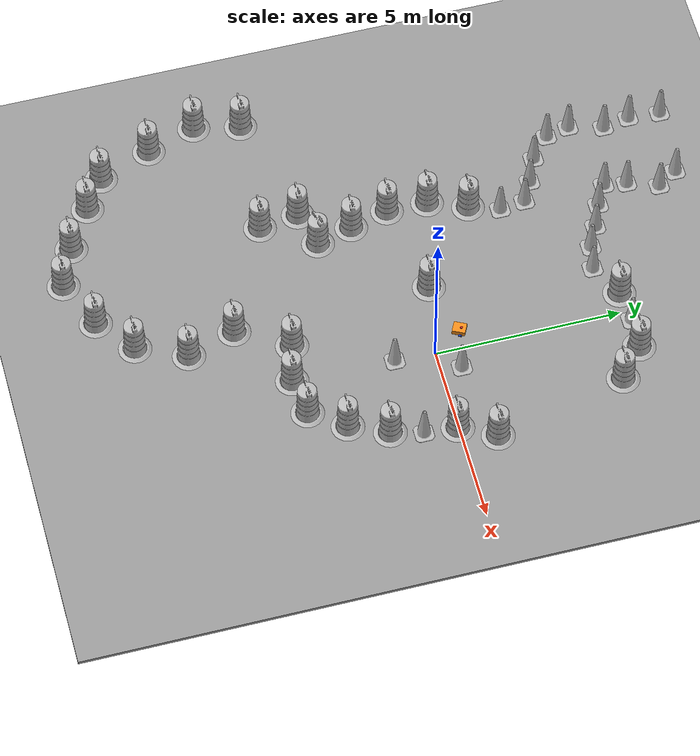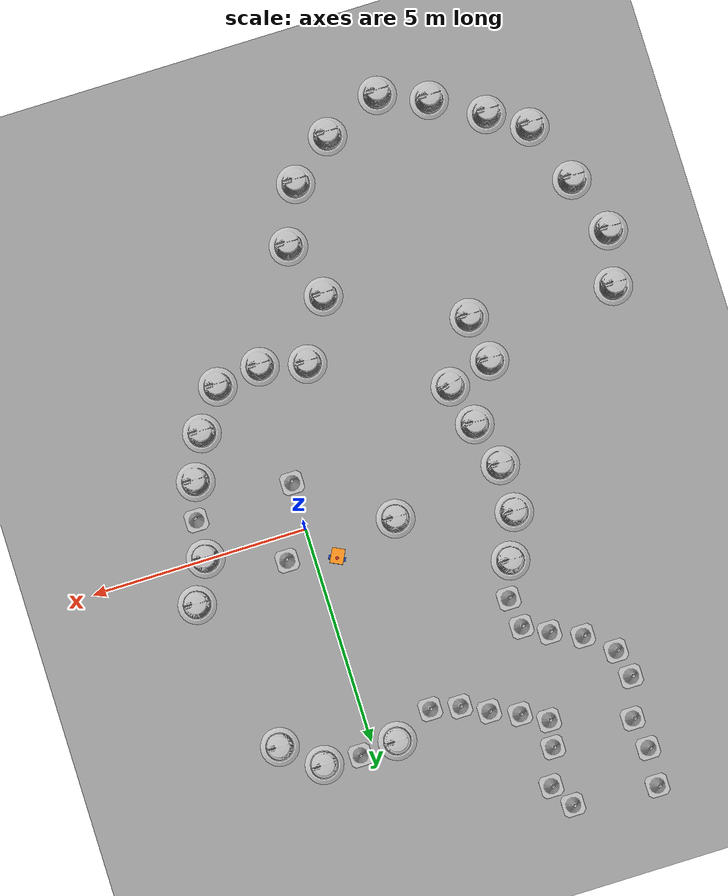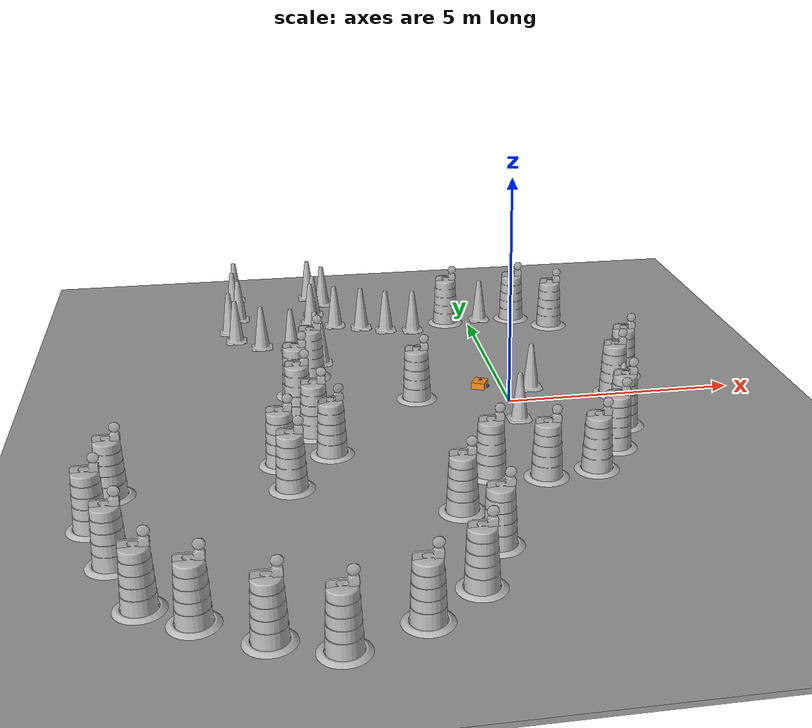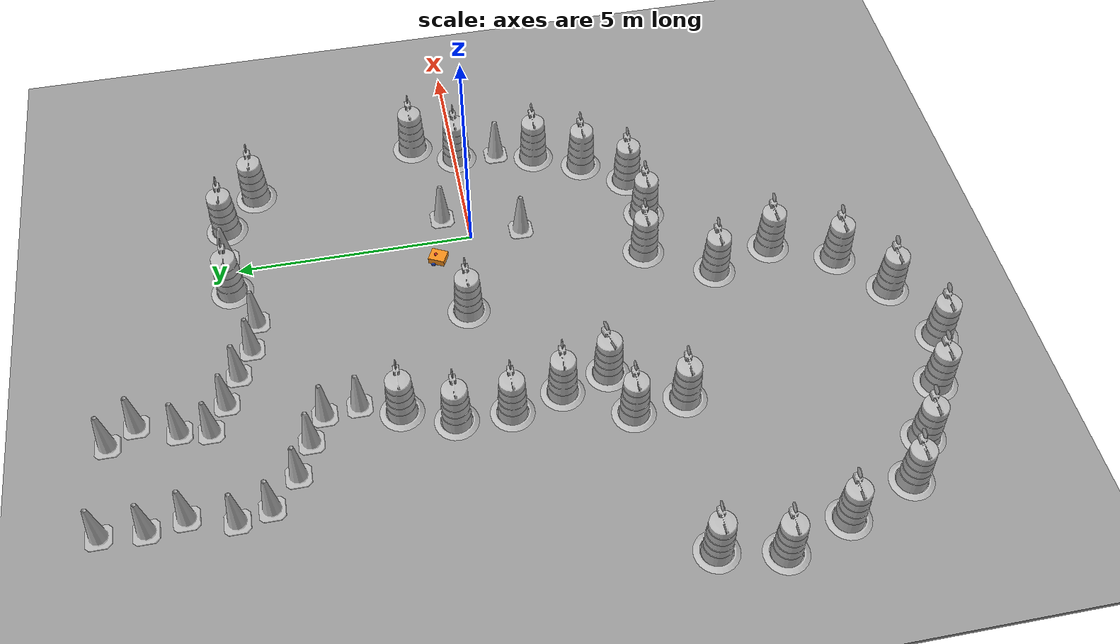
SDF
<sdf version="1.7">
 <world name="default">
  <light name="sun" type="directional">
   <pose>0 0 10 0 -0 0</pose>
   <diffuse>0.8 0.8 0.8 1</diffuse>
   <specular>0.2 0.2 0.2 1</specular>
   <attenuation>
    <range>1000</range>
    <constant>0.9</constant>
    <linear>0.01</linear>
    <quadratic>0.001</quadratic>
   </attenuation>
   <direction>-0.5 0.1 -0.9</direction>
   <spot><inner_angle>0</inner_angle><outer_angle>0</outer_angle><falloff>0</falloff></spot>
  </light>
  <model name="ground_plane">
   <static>1</static>
   <link name="link">
    <collision name="collision">
     <geometry><plane><normal>0 0 1</normal><size>100 100</size></plane></geometry>
     <surface><friction><ode><mu>100</mu><mu2>50</mu2></ode></friction></surface>
    </collision>
    <visual name="visual">
     <cast_shadows>0</cast_shadows>
     <geometry><plane><normal>0 0 1</normal><size>100 100</size></plane></geometry>
     <material>
      <script><uri>file://media/materials/scripts/gazebo.material</uri><name>Gazebo/Grey</name></script>
     </material>
    </visual>
   </link>
  </model>
  <gravity>0 0 -9.8</gravity>
  <magnetic_field>6e-06 2.3e-05 -4.2e-05</magnetic_field>
  <atmosphere type="adiabatic"/>
  <physics type="ode">
   <max_step_size>0.001</max_step_size>
   <real_time_factor>1</real_time_factor>
   <real_time_update_rate>1000</real_time_update_rate>
  </physics>
  <scene><ambient>0.4 0.4 0.4 1</ambient><background>0.7 0.7 0.7 1</background><shadows>1</shadows></scene>
  <audio><device>default</device></audio>
  <spherical_coordinates>
   <surface_model>EARTH_WGS84</surface_model>
   <latitude_deg>0</latitude_deg>
   <longitude_deg>0</longitude_deg>
   <elevation>0</elevation>
   <heading_deg>0</heading_deg>
  </spherical_coordinates>
  <model name="my_bot">
   <link name="base_link">
    <inertial>
     <pose>0.095455 0 -0.009091 0 -0 0</pose>
     <mass>1.1</mass>
     <inertia>
      <ixx>0.0114472</ixx>
      <ixy>0</ixy>
      <ixz>0.000295455</ixz>
      <iyy>0.0168287</iyy>
      <iyz>0</iyz>
      <izz>0.0134427</izz>
     </inertia>
    </inertial>
    <collision name="base_link_fixed_joint_lump__chassis_collision">
     <pose>0.05 0 0.075 0 -0 0</pose>
     <geometry><box><size>0.35 0.3 0.15</size></box></geometry>
    </collision>
    <collision name="base_link_fixed_joint_lump__caster_wheel_collision_1">
     <pose>0.16 0 0 1.5708 -0 0</pose>
     <geometry><sphere><radius>0.05</radius></sphere></geometry>
     <surface><friction><ode><mu>0.1</mu><mu2>0.1</mu2></ode></friction></surface>
    </collision>
    <collision name="base_link_fixed_joint_lump__laser_frame_collision_2">
     <pose>0 0 0.15 0 -0 0</pose>
     <geometry><cylinder><length>0.03</length><radius>0.035</radius></cylinder></geometry>
    </collision>
    <visual name="base_link_fixed_joint_lump__chassis_visual">
     <pose>0.05 0 0.075 0 -0 0</pose>
     <geometry><box><size>0.35 0.3 0.15</size></box></geometry>
     <material>
      <script><name>Gazebo/Orange</name><uri>file://media/materials/scripts/gazebo.material</uri></script>
     </material>
    </visual>
    <visual name="base_link_fixed_joint_lump__caster_wheel_visual_1">
     <pose>0.16 0 0 1.5708 -0 0</pose>
     <geometry><sphere><radius>0.05</radius></sphere></geometry>
     <material>
      <script><name>Gazebo/white</name><uri>file://media/materials/scripts/gazebo.material</uri></script>
     </material>
    </visual>
    <visual name="base_link_fixed_joint_lump__laser_frame_visual_2">
     <pose>0 0 0.15 0 -0 0</pose>
     <geometry><cylinder><length>0.03</length><radius>0.035</radius></cylinder></geometry>
     <material>
      <script><name>Gazebo/red</name><uri>file://media/materials/scripts/gazebo.material</uri></script>
     </material>
    </visual>
    <sensor name="laser" type="ray">
     <visualize>1</visualize>
     <update_rate>10</update_rate>
     <ray>
      <scan>
       <horizontal>
        <samples>360</samples>
        <min_angle>-3.14</min_angle>
        <max_angle>3.14</max_angle>
        <resolution>1</resolution>
       </horizontal>
       <vertical><samples>1</samples><min_angle>0</min_angle><max_angle>0</max_angle></vertical>
      </scan>
      <range><min>0.3</min><max>12</max></range>
     </ray>
     <plugin name="laser_controller" filename="libgazebo_ros_ray_sensor.so">
      <ros><argument>~/out:=scan</argument></ros>
      <output_type>sensor_msgs/LaserScan</output_type>
      <frame_name>laser_frame</frame_name>
     </plugin>
     <pose>0 0 0.15 0 -0 0</pose>
    </sensor>
   </link>
   <joint name="left_wheel_joint" type="revolute">
    <pose relative_to="base_link">0 0.175 0 -1.5708 0 0</pose>
    <parent>base_link</parent>
    <child>left_wheel</child>
    <axis>
     <xyz>0 0 1</xyz>
     <limit><lower>-1e+16</lower><upper>1e+16</upper></limit>
     <dynamics>
      <damping>1</damping>
      <friction>0.5</friction>
      <spring_reference>0</spring_reference>
      <spring_stiffness>0</spring_stiffness>
     </dynamics>
    </axis>
   </joint>
   <link name="left_wheel">
    <pose relative_to="left_wheel_joint">0 0 0 0 -0 0</pose>
    <inertial>
     <mass>0.5</mass>
     <inertia>
      <ixx>0.000379167</ixx>
      <ixy>0</ixy>
      <ixz>0</ixz>
      <iyy>0.000379167</iyy>
      <iyz>0</iyz>
      <izz>0.000625</izz>
     </inertia>
    </inertial>
    <collision name="left_wheel_collision">
     <geometry><cylinder><length>0.04</length><radius>0.05</radius></cylinder></geometry>
     <surface><friction><ode><mu>1.5</mu><mu2>1.5</mu2></ode></friction></surface>
    </collision>
    <visual name="left_wheel_visual">
     <geometry><cylinder><length>0.04</length><radius>0.05</radius></cylinder></geometry>
     <material>
      <script><name>Gazebo/Blue</name><uri>file://media/materials/scripts/gazebo.material</uri></script>
     </material>
    </visual>
   </link>
   <joint name="right_wheel_joint" type="revolute">
    <pose relative_to="base_link">0 -0.175 0 1.5708 -0 0</pose>
    <parent>base_link</parent>
    <child>right_wheel</child>
    <axis>
     <xyz>0 0 -1</xyz>
     <limit><lower>-1e+16</lower><upper>1e+16</upper></limit>
     <dynamics>
      <damping>1</damping>
      <friction>0.5</friction>
      <spring_reference>0</spring_reference>
      <spring_stiffness>0</spring_stiffness>
     </dynamics>
    </axis>
   </joint>
   <link name="right_wheel">
    <pose relative_to="right_wheel_joint">0 0 0 0 -0 0</pose>
    <inertial>
     <mass>0.5</mass>
     <inertia>
      <ixx>0.000379167</ixx>
      <ixy>0</ixy>
      <ixz>0</ixz>
      <iyy>0.000379167</iyy>
      <iyz>0</iyz>
      <izz>0.000625</izz>
     </inertia>
    </inertial>
    <collision name="right_wheel_collision">
     <geometry><cylinder><length>0.04</length><radius>0.05</radius></cylinder></geometry>
     <surface><friction><ode><mu>1.5</mu><mu2>1.5</mu2></ode></friction></surface>
    </collision>
    <visual name="right_wheel_visual">
     <geometry><cylinder><length>0.04</length><radius>0.05</radius></cylinder></geometry>
     <material>
      <script><name>Gazebo/Blue</name><uri>file://media/materials/scripts/gazebo.material</uri></script>
     </material>
    </visual>
   </link>
   <static>0</static>
   <plugin name="diff_drive" filename="libgazebo_ros_diff_drive.so">
    <left_joint>left_wheel_joint</left_joint>
    <right_joint>right_wheel_joint</right_joint>
    <wheel_separation>0.297</wheel_separation>
    <wheel_diameter>0.066</wheel_diameter>
    <max_wheel_torque>200</max_wheel_torque>
    <max_wheel_acceleration>10.0</max_wheel_acceleration>
    <odometry_frame>odom</odometry_frame>
    <robot_base_frame>base_link</robot_base_frame>
    <publish_odom>1</publish_odom>
    <publish_odom_tf>1</publish_odom_tf>
    <publish_wheel_tf>1</publish_wheel_tf>
   </plugin>
   <pose>-0.487463 0.828669 0.05 -0 1e-06 -2.03513</pose>
  </model>
  <model name="Construction Barrel">
   <link name="link">
    <inertial>
     <pose>0 0 0.4 0 -0 0</pose>
     <mass>500</mass>
     <inertia><ixx>51.2096</ixx><iyy>51.2096</iyy><izz>25</izz><ixy>0</ixy><ixz>0</ixz><iyz>0</iyz></inertia>
    </inertial>
    <collision name="collision">
     <geometry><mesh><uri>model://construction_barrel/meshes/construction_barrel.dae</uri></mesh></geometry>
    </collision>
    <visual name="visual">
     <geometry><mesh><uri>model://construction_barrel/meshes/construction_barrel.dae</uri></mesh></geometry>
    </visual>
   </link>
   <pose>-4.07026 -2.12373 -0 0 -0 0.274719</pose>
  </model>
  <model name="Construction Barrel_0">
   <link name="link">
    <inertial>
     <pose>0 0 0.4 0 -0 0</pose>
     <mass>500</mass>
     <inertia><ixx>51.2096</ixx><iyy>51.2096</iyy><izz>25</izz><ixy>0</ixy><ixz>0</ixz><iyz>0</iyz></inertia>
    </inertial>
    <collision name="collision">
     <geometry><mesh><uri>model://construction_barrel/meshes/construction_barrel.dae</uri></mesh></geometry>
    </collision>
    <visual name="visual">
     <geometry><mesh><uri>model://construction_barrel/meshes/construction_barrel.dae</uri></mesh></geometry>
    </visual>
   </link>
   <pose>-4.34511 -1.14496 -2e-06 7e-06 -4e-06 -0.054956</pose>
  </model>
  <model name="Construction Barrel_1">
   <link name="link">
    <inertial>
     <pose>0 0 0.4 0 -0 0</pose>
     <mass>500</mass>
     <inertia><ixx>51.2096</ixx><iyy>51.2096</iyy><izz>25</izz><ixy>0</ixy><ixz>0</ixz><iyz>0</iyz></inertia>
    </inertial>
    <collision name="collision">
     <geometry><mesh><uri>model://construction_barrel/meshes/construction_barrel.dae</uri></mesh></geometry>
    </collision>
    <visual name="visual">
     <geometry><mesh><uri>model://construction_barrel/meshes/construction_barrel.dae</uri></mesh></geometry>
    </visual>
   </link>
   <pose>-4.62095 -0.092543 0 0 0 -0.000107</pose>
  </model>
  <model name="Construction Barrel_2">
   <link name="link">
    <inertial>
     <pose>0 0 0.4 0 -0 0</pose>
     <mass>500</mass>
     <inertia><ixx>51.2096</ixx><iyy>51.2096</iyy><izz>25</izz><ixy>0</ixy><ixz>0</ixz><iyz>0</iyz></inertia>
    </inertial>
    <collision name="collision">
     <geometry><mesh><uri>model://construction_barrel/meshes/construction_barrel.dae</uri></mesh></geometry>
    </collision>
    <visual name="visual">
     <geometry><mesh><uri>model://construction_barrel/meshes/construction_barrel.dae</uri></mesh></geometry>
    </visual>
   </link>
   <pose>-4.60653 1.01084 -2e-06 -8e-06 -4e-06 -0.000113</pose>
  </model>
  <model name="Construction Barrel_3">
   <link name="link">
    <inertial>
     <pose>0 0 0.4 0 -0 0</pose>
     <mass>500</mass>
     <inertia><ixx>51.2096</ixx><iyy>51.2096</iyy><izz>25</izz><ixy>0</ixy><ixz>0</ixz><iyz>0</iyz></inertia>
    </inertial>
    <collision name="collision">
     <geometry><mesh><uri>model://construction_barrel/meshes/construction_barrel.dae</uri></mesh></geometry>
    </collision>
    <visual name="visual">
     <geometry><mesh><uri>model://construction_barrel/meshes/construction_barrel.dae</uri></mesh></geometry>
    </visual>
   </link>
   <pose>-2.00518 0.361484 -2e-06 -8e-06 -4e-06 -0.000103</pose>
  </model>
  <model name="Construction Barrel_4">
   <link name="link">
    <inertial>
     <pose>0 0 0.4 0 -0 0</pose>
     <mass>500</mass>
     <inertia><ixx>51.2096</ixx><iyy>51.2096</iyy><izz>25</izz><ixy>0</ixy><ixz>0</ixz><iyz>0</iyz></inertia>
    </inertial>
    <collision name="collision">
     <geometry><mesh><uri>model://construction_barrel/meshes/construction_barrel.dae</uri></mesh></geometry>
    </collision>
    <visual name="visual">
     <geometry><mesh><uri>model://construction_barrel/meshes/construction_barrel.dae</uri></mesh></geometry>
    </visual>
   </link>
   <pose>2.3487 -0.040407 0 0 0 -9.7e-05</pose>
  </model>
  <model name="Construction Barrel_5">
   <link name="link">
    <inertial>
     <pose>0 0 0.4 0 -0 0</pose>
     <mass>500</mass>
     <inertia><ixx>51.2096</ixx><iyy>51.2096</iyy><izz>25</izz><ixy>0</ixy><ixz>0</ixz><iyz>0</iyz></inertia>
    </inertial>
    <collision name="collision">
     <geometry><mesh><uri>model://construction_barrel/meshes/construction_barrel.dae</uri></mesh></geometry>
    </collision>
    <visual name="visual">
     <geometry><mesh><uri>model://construction_barrel/meshes/construction_barrel.dae</uri></mesh></geometry>
    </visual>
   </link>
   <pose>2.83639 0.901258 0 0 0 -9.4e-05</pose>
  </model>
  <model name="Construction Barrel_6">
   <link name="link">
    <inertial>
     <pose>0 0 0.4 0 -0 0</pose>
     <mass>500</mass>
     <inertia><ixx>51.2096</ixx><iyy>51.2096</iyy><izz>25</izz><ixy>0</ixy><ixz>0</ixz><iyz>0</iyz></inertia>
    </inertial>
    <collision name="collision">
     <geometry><mesh><uri>model://construction_barrel/meshes/construction_barrel.dae</uri></mesh></geometry>
    </collision>
    <visual name="visual">
     <geometry><mesh><uri>model://construction_barrel/meshes/construction_barrel.dae</uri></mesh></geometry>
    </visual>
   </link>
   <pose>1.16099 5.18203 0 0 0 -8.9e-05</pose>
  </model>
  <model name="Construction Barrel_7">
   <link name="link">
    <inertial>
     <pose>0 0 0.4 0 -0 0</pose>
     <mass>500</mass>
     <inertia><ixx>51.2096</ixx><iyy>51.2096</iyy><izz>25</izz><ixy>0</ixy><ixz>0</ixz><iyz>0</iyz></inertia>
    </inertial>
    <collision name="collision">
     <geometry><mesh><uri>model://construction_barrel/meshes/construction_barrel.dae</uri></mesh></geometry>
    </collision>
    <visual name="visual">
     <geometry><mesh><uri>model://construction_barrel/meshes/construction_barrel.dae</uri></mesh></geometry>
    </visual>
   </link>
   <pose>1.99838 4.49939 0 0 0 -8.8e-05</pose>
  </model>
  <model name="Construction Barrel_8">
   <link name="link">
    <inertial>
     <pose>0 0 0.4 0 -0 0</pose>
     <mass>500</mass>
     <inertia><ixx>51.2096</ixx><iyy>51.2096</iyy><izz>25</izz><ixy>0</ixy><ixz>0</ixz><iyz>0</iyz></inertia>
    </inertial>
    <collision name="collision">
     <geometry><mesh><uri>model://construction_barrel/meshes/construction_barrel.dae</uri></mesh></geometry>
    </collision>
    <visual name="visual">
     <geometry><mesh><uri>model://construction_barrel/meshes/construction_barrel.dae</uri></mesh></geometry>
    </visual>
   </link>
   <pose>-1.14315 -3.56631 0 0 0 -8.6e-05</pose>
  </model>
  <model name="Construction Barrel_9">
   <link name="link">
    <inertial>
     <pose>0 0 0.4 0 -0 0</pose>
     <mass>500</mass>
     <inertia><ixx>51.2096</ixx><iyy>51.2096</iyy><izz>25</izz><ixy>0</ixy><ixz>0</ixz><iyz>0</iyz></inertia>
    </inertial>
    <collision name="collision">
     <geometry><mesh><uri>model://construction_barrel/meshes/construction_barrel.dae</uri></mesh></geometry>
    </collision>
    <visual name="visual">
     <geometry><mesh><uri>model://construction_barrel/meshes/construction_barrel.dae</uri></mesh></geometry>
    </visual>
   </link>
   <pose>-0.096242 -3.82602 0 0 0 -8.5e-05</pose>
  </model>
  <model name="Construction Barrel_12">
   <link name="link">
    <inertial>
     <pose>0 0 0.4 0 -0 0</pose>
     <mass>500</mass>
     <inertia><ixx>51.2096</ixx><iyy>51.2096</iyy><izz>25</izz><ixy>0</ixy><ixz>0</ixz><iyz>0</iyz></inertia>
    </inertial>
    <collision name="collision">
     <geometry><mesh><uri>model://construction_barrel/meshes/construction_barrel.dae</uri></mesh></geometry>
    </collision>
    <visual name="visual">
     <geometry><mesh><uri>model://construction_barrel/meshes/construction_barrel.dae</uri></mesh></geometry>
    </visual>
   </link>
   <pose>2.05341 -1.76143 0 0 0 -8.1e-05</pose>
  </model>
  <model name="Construction Cone_2">
   <link name="link">
    <collision name="collision">
     <geometry>
      <mesh><scale>10 10 10</scale><uri>model://construction_cone/meshes/construction_cone.dae</uri></mesh>
     </geometry>
    </collision>
    <visual name="visual">
     <geometry>
      <mesh><scale>10 10 10</scale><uri>model://construction_cone/meshes/construction_cone.dae</uri></mesh>
     </geometry>
    </visual>
    <inertial>
     <inertia><ixx>1</ixx><ixy>0</ixy><ixz>0</ixz><iyy>1</iyy><iyz>0</iyz><izz>1</izz></inertia>
     <mass>1</mass>
    </inertial>
   </link>
   <pose>2.29105 -0.928032 -0 0 -1e-06 0</pose>
  </model>
  <model name="Construction Cone_4">
   <link name="link">
    <collision name="collision">
     <geometry>
      <mesh><scale>10 10 10</scale><uri>model://construction_cone/meshes/construction_cone.dae</uri></mesh>
     </geometry>
    </collision>
    <visual name="visual">
     <geometry>
      <mesh><scale>10 10 10</scale><uri>model://construction_cone/meshes/construction_cone.dae</uri></mesh>
     </geometry>
    </visual>
    <inertial>
     <inertia><ixx>1</ixx><ixy>0</ixy><ixz>0</ixz><iyy>1</iyy><iyz>0</iyz><izz>1</izz></inertia>
     <mass>1</mass>
    </inertial>
   </link>
   <pose>-3.99702 3.52682 -0 0 -1e-06 0</pose>
  </model>
  <model name="Construction Cone_5">
   <link name="link">
    <collision name="collision">
     <geometry>
      <mesh><scale>10 10 10</scale><uri>model://construction_cone/meshes/construction_cone.dae</uri></mesh>
     </geometry>
    </collision>
    <visual name="visual">
     <geometry>
      <mesh><scale>10 10 10</scale><uri>model://construction_cone/meshes/construction_cone.dae</uri></mesh>
     </geometry>
    </visual>
    <inertial>
     <inertia><ixx>1</ixx><ixy>0</ixy><ixz>0</ixz><iyy>1</iyy><iyz>0</iyz><izz>1</izz></inertia>
     <mass>1</mass>
    </inertial>
   </link>
   <pose>-4.56079 3.83305 -0 0 -1e-06 0</pose>
  </model>
  <model name="Construction Cone_6">
   <link name="link">
    <collision name="collision">
     <geometry>
      <mesh><scale>10 10 10</scale><uri>model://construction_cone/meshes/construction_cone.dae</uri></mesh>
     </geometry>
    </collision>
    <visual name="visual">
     <geometry>
      <mesh><scale>10 10 10</scale><uri>model://construction_cone/meshes/construction_cone.dae</uri></mesh>
     </geometry>
    </visual>
    <inertial>
     <inertia><ixx>1</ixx><ixy>0</ixy><ixz>0</ixz><iyy>1</iyy><iyz>0</iyz><izz>1</izz></inertia>
     <mass>1</mass>
    </inertial>
   </link>
   <pose>-5.25679 4.13426 -1e-05 0 -0 0</pose>
  </model>
  <model name="Construction Cone_7">
   <link name="link">
    <collision name="collision">
     <geometry>
      <mesh><scale>10 10 10</scale><uri>model://construction_cone/meshes/construction_cone.dae</uri></mesh>
     </geometry>
    </collision>
    <visual name="visual">
     <geometry>
      <mesh><scale>10 10 10</scale><uri>model://construction_cone/meshes/construction_cone.dae</uri></mesh>
     </geometry>
    </visual>
    <inertial>
     <inertia><ixx>1</ixx><ixy>0</ixy><ixz>0</ixz><iyy>1</iyy><iyz>0</iyz><izz>1</izz></inertia>
     <mass>1</mass>
    </inertial>
   </link>
   <pose>-5.86702 4.67082 -0 -0 -0 -0</pose>
  </model>
  <model name="Construction Cone_8">
   <link name="link">
    <collision name="collision">
     <geometry>
      <mesh><scale>10 10 10</scale><uri>model://construction_cone/meshes/construction_cone.dae</uri></mesh>
     </geometry>
    </collision>
    <visual name="visual">
     <geometry>
      <mesh><scale>10 10 10</scale><uri>model://construction_cone/meshes/construction_cone.dae</uri></mesh>
     </geometry>
    </visual>
    <inertial>
     <inertia><ixx>1</ixx><ixy>0</ixy><ixz>0</ixz><iyy>1</iyy><iyz>0</iyz><izz>1</izz></inertia>
     <mass>1</mass>
    </inertial>
   </link>
   <pose>-6.01646 5.31771 -0 0 -1e-06 0</pose>
  </model>
  <model name="Construction Cone_9">
   <link name="link">
    <collision name="collision">
     <geometry>
      <mesh><scale>10 10 10</scale><uri>model://construction_cone/meshes/construction_cone.dae</uri></mesh>
     </geometry>
    </collision>
    <visual name="visual">
     <geometry>
      <mesh><scale>10 10 10</scale><uri>model://construction_cone/meshes/construction_cone.dae</uri></mesh>
     </geometry>
    </visual>
    <inertial>
     <inertia><ixx>1</ixx><ixy>0</ixy><ixz>0</ixz><iyy>1</iyy><iyz>0</iyz><izz>1</izz></inertia>
     <mass>1</mass>
    </inertial>
   </link>
   <pose>-5.77072 6.23533 -0 1e-06 -0 0</pose>
  </model>
  <model name="Construction Cone_10">
   <link name="link">
    <collision name="collision">
     <geometry>
      <mesh><scale>10 10 10</scale><uri>model://construction_cone/meshes/construction_cone.dae</uri></mesh>
     </geometry>
    </collision>
    <visual name="visual">
     <geometry>
      <mesh><scale>10 10 10</scale><uri>model://construction_cone/meshes/construction_cone.dae</uri></mesh>
     </geometry>
    </visual>
    <inertial>
     <inertia><ixx>1</ixx><ixy>0</ixy><ixz>0</ixz><iyy>1</iyy><iyz>0</iyz><izz>1</izz></inertia>
     <mass>1</mass>
    </inertial>
   </link>
   <pose>-1.48193 4.68878 -1e-05 -1e-06 0 0</pose>
  </model>
  <model name="Construction Cone_11">
   <link name="link">
    <collision name="collision">
     <geometry>
      <mesh><scale>10 10 10</scale><uri>model://construction_cone/meshes/construction_cone.dae</uri></mesh>
     </geometry>
    </collision>
    <visual name="visual">
     <geometry>
      <mesh><scale>10 10 10</scale><uri>model://construction_cone/meshes/construction_cone.dae</uri></mesh>
     </geometry>
    </visual>
    <inertial>
     <inertia><ixx>1</ixx><ixy>0</ixy><ixz>0</ixz><iyy>1</iyy><iyz>0</iyz><izz>1</izz></inertia>
     <mass>1</mass>
    </inertial>
   </link>
   <pose>-2.14697 4.83069 -1e-05 0 -0 0</pose>
  </model>
  <model name="Construction Cone_12">
   <link name="link">
    <collision name="collision">
     <geometry>
      <mesh><scale>10 10 10</scale><uri>model://construction_cone/meshes/construction_cone.dae</uri></mesh>
     </geometry>
    </collision>
    <visual name="visual">
     <geometry>
      <mesh><scale>10 10 10</scale><uri>model://construction_cone/meshes/construction_cone.dae</uri></mesh>
     </geometry>
    </visual>
    <inertial>
     <inertia><ixx>1</ixx><ixy>0</ixy><ixz>0</ixz><iyy>1</iyy><iyz>0</iyz><izz>1</izz></inertia>
     <mass>1</mass>
    </inertial>
   </link>
   <pose>-2.7373 5.12894 -0 1e-06 -0 0</pose>
  </model>
  <model name="Construction Cone_13">
   <link name="link">
    <collision name="collision">
     <geometry>
      <mesh><scale>10 10 10</scale><uri>model://construction_cone/meshes/construction_cone.dae</uri></mesh>
     </geometry>
    </collision>
    <visual name="visual">
     <geometry>
      <mesh><scale>10 10 10</scale><uri>model://construction_cone/meshes/construction_cone.dae</uri></mesh>
     </geometry>
    </visual>
    <inertial>
     <inertia><ixx>1</ixx><ixy>0</ixy><ixz>0</ixz><iyy>1</iyy><iyz>0</iyz><izz>1</izz></inertia>
     <mass>1</mass>
    </inertial>
   </link>
   <pose>-3.38136 5.39345 -0 0 -1e-06 0</pose>
  </model>
  <model name="Construction Cone_14">
   <link name="link">
    <collision name="collision">
     <geometry>
      <mesh><scale>10 10 10</scale><uri>model://construction_cone/meshes/construction_cone.dae</uri></mesh>
     </geometry>
    </collision>
    <visual name="visual">
     <geometry>
      <mesh><scale>10 10 10</scale><uri>model://construction_cone/meshes/construction_cone.dae</uri></mesh>
     </geometry>
    </visual>
    <inertial>
     <inertia><ixx>1</ixx><ixy>0</ixy><ixz>0</ixz><iyy>1</iyy><iyz>0</iyz><izz>1</izz></inertia>
     <mass>1</mass>
    </inertial>
   </link>
   <pose>-3.96226 5.71791 -0 0 -1e-06 0</pose>
  </model>
  <model name="Construction Cone_15">
   <link name="link">
    <collision name="collision">
     <geometry>
      <mesh><scale>10 10 10</scale><uri>model://construction_cone/meshes/construction_cone.dae</uri></mesh>
     </geometry>
    </collision>
    <visual name="visual">
     <geometry>
      <mesh><scale>10 10 10</scale><uri>model://construction_cone/meshes/construction_cone.dae</uri></mesh>
     </geometry>
    </visual>
    <inertial>
     <inertia><ixx>1</ixx><ixy>0</ixy><ixz>0</ixz><iyy>1</iyy><iyz>0</iyz><izz>1</izz></inertia>
     <mass>1</mass>
    </inertial>
   </link>
   <pose>-3.86613 6.32282 -0 0 -1e-06 0</pose>
  </model>
  <model name="Construction Cone_16">
   <link name="link">
    <collision name="collision">
     <geometry>
      <mesh><scale>10 10 10</scale><uri>model://construction_cone/meshes/construction_cone.dae</uri></mesh>
     </geometry>
    </collision>
    <visual name="visual">
     <geometry>
      <mesh><scale>10 10 10</scale><uri>model://construction_cone/meshes/construction_cone.dae</uri></mesh>
     </geometry>
    </visual>
    <inertial>
     <inertia><ixx>1</ixx><ixy>0</ixy><ixz>0</ixz><iyy>1</iyy><iyz>0</iyz><izz>1</izz></inertia>
     <mass>1</mass>
    </inertial>
   </link>
   <pose>-5.90527 6.97216 -1e-05 0 -0 0</pose>
  </model>
  <model name="Construction Cone_17">
   <link name="link">
    <collision name="collision">
     <geometry>
      <mesh><scale>10 10 10</scale><uri>model://construction_cone/meshes/construction_cone.dae</uri></mesh>
     </geometry>
    </collision>
    <visual name="visual">
     <geometry>
      <mesh><scale>10 10 10</scale><uri>model://construction_cone/meshes/construction_cone.dae</uri></mesh>
     </geometry>
    </visual>
    <inertial>
     <inertia><ixx>1</ixx><ixy>0</ixy><ixz>0</ixz><iyy>1</iyy><iyz>0</iyz><izz>1</izz></inertia>
     <mass>1</mass>
    </inertial>
   </link>
   <pose>-5.85126 7.83653 -0 0 -1e-06 0</pose>
  </model>
  <model name="Construction Cone_18">
   <link name="link">
    <collision name="collision">
     <geometry>
      <mesh><scale>10 10 10</scale><uri>model://construction_cone/meshes/construction_cone.dae</uri></mesh>
     </geometry>
    </collision>
    <visual name="visual">
     <geometry>
      <mesh><scale>10 10 10</scale><uri>model://construction_cone/meshes/construction_cone.dae</uri></mesh>
     </geometry>
    </visual>
    <inertial>
     <inertia><ixx>1</ixx><ixy>0</ixy><ixz>0</ixz><iyy>1</iyy><iyz>0</iyz><izz>1</izz></inertia>
     <mass>1</mass>
    </inertial>
   </link>
   <pose>-3.57133 7.14556 -0 1e-06 -0 0</pose>
  </model>
  <model name="Construction Cone_19">
   <link name="link">
    <collision name="collision">
     <geometry>
      <mesh><scale>10 10 10</scale><uri>model://construction_cone/meshes/construction_cone.dae</uri></mesh>
     </geometry>
    </collision>
    <visual name="visual">
     <geometry>
      <mesh><scale>10 10 10</scale><uri>model://construction_cone/meshes/construction_cone.dae</uri></mesh>
     </geometry>
    </visual>
    <inertial>
     <inertia><ixx>1</ixx><ixy>0</ixy><ixz>0</ixz><iyy>1</iyy><iyz>0</iyz><izz>1</izz></inertia>
     <mass>1</mass>
    </inertial>
   </link>
   <pose>-3.91433 7.69265 -0 0 -1e-06 0</pose>
  </model>
  <model name="Construction Cone_20">
   <link name="link">
    <collision name="collision">
     <geometry>
      <mesh><scale>10 10 10</scale><uri>model://construction_cone/meshes/construction_cone.dae</uri></mesh>
     </geometry>
    </collision>
    <visual name="visual">
     <geometry>
      <mesh><scale>10 10 10</scale><uri>model://construction_cone/meshes/construction_cone.dae</uri></mesh>
     </geometry>
    </visual>
    <inertial>
     <inertia><ixx>1</ixx><ixy>0</ixy><ixz>0</ixz><iyy>1</iyy><iyz>0</iyz><izz>1</izz></inertia>
     <mass>1</mass>
    </inertial>
   </link>
   <pose>-0.017332 -1.09452 -0 0 -1e-06 0</pose>
  </model>
  <model name="Construction Cone_21">
   <link name="link">
    <collision name="collision">
     <geometry>
      <mesh><scale>10 10 10</scale><uri>model://construction_cone/meshes/construction_cone.dae</uri></mesh>
     </geometry>
    </collision>
    <visual name="visual">
     <geometry>
      <mesh><scale>10 10 10</scale><uri>model://construction_cone/meshes/construction_cone.dae</uri></mesh>
     </geometry>
    </visual>
    <inertial>
     <inertia><ixx>1</ixx><ixy>0</ixy><ixz>0</ixz><iyy>1</iyy><iyz>0</iyz><izz>1</izz></inertia>
     <mass>1</mass>
    </inertial>
   </link>
   <pose>0.605006 0.545035 -0 0 -1e-06 0</pose>
  </model>
  <model name="Construction Barrel_13">
   <link name="link">
    <inertial>
     <pose>0 0 0.4 0 -0 0</pose>
     <mass>500</mass>
     <inertia><ixx>51.2096</ixx><iyy>51.2096</iyy><izz>25</izz><ixy>0</ixy><ixz>0</ixz><iyz>0</iyz></inertia>
    </inertial>
    <collision name="collision">
     <geometry><mesh><uri>model://construction_barrel/meshes/construction_barrel.dae</uri></mesh></geometry>
    </collision>
    <visual name="visual">
     <geometry><mesh><uri>model://construction_barrel/meshes/construction_barrel.dae</uri></mesh></geometry>
    </visual>
   </link>
   <pose>-4.20023 2.03026 -1e-06 1e-06 6e-06 -5.4e-05</pose>
  </model>
  <model name="Construction Cone_22">
   <link name="link">
    <collision name="collision">
     <geometry>
      <mesh><scale>10 10 10</scale><uri>model://construction_cone/meshes/construction_cone.dae</uri></mesh>
     </geometry>
    </collision>
    <visual name="visual">
     <geometry>
      <mesh><scale>10 10 10</scale><uri>model://construction_cone/meshes/construction_cone.dae</uri></mesh>
     </geometry>
    </visual>
    <inertial>
     <inertia><ixx>1</ixx><ixy>0</ixy><ixz>0</ixz><iyy>1</iyy><iyz>0</iyz><izz>1</izz></inertia>
     <mass>1</mass>
    </inertial>
   </link>
   <pose>-3.90733 2.83271 -1e-05 0 -0 0</pose>
  </model>
  <model name="Construction Barrel_14">
   <link name="link">
    <inertial>
     <pose>0 0 0.4 0 -0 0</pose>
     <mass>500</mass>
     <inertia><ixx>51.2096</ixx><iyy>51.2096</iyy><izz>25</izz><ixy>0</ixy><ixz>0</ixz><iyz>0</iyz></inertia>
    </inertial>
    <collision name="collision">
     <geometry><mesh><uri>model://construction_barrel/meshes/construction_barrel.dae</uri></mesh></geometry>
    </collision>
    <visual name="visual">
     <geometry><mesh><uri>model://construction_barrel/meshes/construction_barrel.dae</uri></mesh></geometry>
    </visual>
   </link>
   <pose>-0.56327 5.15336 0 0 0 -4.6e-05</pose>
  </model>
  <model name="Construction Cone_23">
   <link name="link">
    <collision name="collision">
     <geometry>
      <mesh><scale>10 10 10</scale><uri>model://construction_cone/meshes/construction_cone.dae</uri></mesh>
     </geometry>
    </collision>
    <visual name="visual">
     <geometry>
      <mesh><scale>10 10 10</scale><uri>model://construction_cone/meshes/construction_cone.dae</uri></mesh>
     </geometry>
    </visual>
    <inertial>
     <inertia><ixx>1</ixx><ixy>0</ixy><ixz>0</ixz><iyy>1</iyy><iyz>0</iyz><izz>1</izz></inertia>
     <mass>1</mass>
    </inertial>
   </link>
   <pose>0.321524 5.21872 -1e-05 0 -0 0</pose>
  </model>
  <model name="Construction Barrel_10">
   <link name="link">
    <inertial>
     <pose>0 0 0.4 0 -0 0</pose>
     <mass>500</mass>
     <inertia><ixx>51.2096</ixx><iyy>51.2096</iyy><izz>25</izz><ixy>0</ixy><ixz>0</ixz><iyz>0</iyz></inertia>
    </inertial>
    <collision name="collision">
     <geometry><mesh><uri>model://construction_barrel/meshes/construction_barrel.dae</uri></mesh></geometry>
    </collision>
    <visual name="visual">
     <geometry><mesh><uri>model://construction_barrel/meshes/construction_barrel.dae</uri></mesh></geometry>
    </visual>
   </link>
   <pose>0.945694 -3.6738 0 0 0 -4.6e-05</pose>
  </model>
  <model name="Construction Barrel_11">
   <link name="link">
    <inertial>
     <pose>0 0 0.4 0 -0 0</pose>
     <mass>500</mass>
     <inertia><ixx>51.2096</ixx><iyy>51.2096</iyy><izz>25</izz><ixy>0</ixy><ixz>0</ixz><iyz>0</iyz></inertia>
    </inertial>
    <collision name="collision">
     <geometry><mesh><uri>model://construction_barrel/meshes/construction_barrel.dae</uri></mesh></geometry>
    </collision>
    <visual name="visual">
     <geometry><mesh><uri>model://construction_barrel/meshes/construction_barrel.dae</uri></mesh></geometry>
    </visual>
   </link>
   <pose>1.59693 -2.76981 -1e-06 1e-06 6e-06 -4.4e-05</pose>
  </model>
  <model name="Construction Barrel_15">
   <link name="link">
    <inertial>
     <pose>0 0 0.4 0 -0 0</pose>
     <mass>500</mass>
     <inertia><ixx>51.2096</ixx><iyy>51.2096</iyy><izz>25</izz><ixy>0</ixy><ixz>0</ixz><iyz>0</iyz></inertia>
    </inertial>
    <collision name="collision">
     <geometry><mesh><uri>model://construction_barrel/meshes/construction_barrel.dae</uri></mesh></geometry>
    </collision>
    <visual name="visual">
     <geometry><mesh><uri>model://construction_barrel/meshes/construction_barrel.dae</uri></mesh></geometry>
    </visual>
   </link>
   <pose>-1.93905 -4.92212 -2e-06 -8e-06 -4e-06 -3.5e-05</pose>
  </model>
  <model name="Construction Barrel_16">
   <link name="link">
    <inertial>
     <pose>0 0 0.4 0 -0 0</pose>
     <mass>500</mass>
     <inertia><ixx>51.2096</ixx><iyy>51.2096</iyy><izz>25</izz><ixy>0</ixy><ixz>0</ixz><iyz>0</iyz></inertia>
    </inertial>
    <collision name="collision">
     <geometry><mesh><uri>model://construction_barrel/meshes/construction_barrel.dae</uri></mesh></geometry>
    </collision>
    <visual name="visual">
     <geometry><mesh><uri>model://construction_barrel/meshes/construction_barrel.dae</uri></mesh></geometry>
    </visual>
   </link>
   <pose>-1.51669 -6.23737 -2e-06 -8e-06 -4e-06 -3.9e-05</pose>
  </model>
  <model name="Construction Barrel_17">
   <link name="link">
    <inertial>
     <pose>0 0 0.4 0 -0 0</pose>
     <mass>500</mass>
     <inertia><ixx>51.2096</ixx><iyy>51.2096</iyy><izz>25</izz><ixy>0</ixy><ixz>0</ixz><iyz>0</iyz></inertia>
    </inertial>
    <collision name="collision">
     <geometry><mesh><uri>model://construction_barrel/meshes/construction_barrel.dae</uri></mesh></geometry>
    </collision>
    <visual name="visual">
     <geometry><mesh><uri>model://construction_barrel/meshes/construction_barrel.dae</uri></mesh></geometry>
    </visual>
   </link>
   <pose>-4.94224 -3.49038 0 0 0 -4e-05</pose>
  </model>
  <model name="Construction Barrel_20">
   <link name="link">
    <inertial>
     <pose>0 0 0.4 0 -0 0</pose>
     <mass>500</mass>
     <inertia><ixx>51.2096</ixx><iyy>51.2096</iyy><izz>25</izz><ixy>0</ixy><ixz>0</ixz><iyz>0</iyz></inertia>
    </inertial>
    <collision name="collision">
     <geometry><mesh><uri>model://construction_barrel/meshes/construction_barrel.dae</uri></mesh></geometry>
    </collision>
    <visual name="visual">
     <geometry><mesh><uri>model://construction_barrel/meshes/construction_barrel.dae</uri></mesh></geometry>
    </visual>
   </link>
   <pose>-2.09051 -7.54327 0 0 -0 -2.6e-05</pose>
  </model>
  <model name="Construction Barrel_21">
   <link name="link">
    <inertial>
     <pose>0 0 0.4 0 -0 0</pose>
     <mass>500</mass>
     <inertia><ixx>51.2096</ixx><iyy>51.2096</iyy><izz>25</izz><ixy>0</ixy><ixz>0</ixz><iyz>0</iyz></inertia>
    </inertial>
    <collision name="collision">
     <geometry><mesh><uri>model://construction_barrel/meshes/construction_barrel.dae</uri></mesh></geometry>
    </collision>
    <visual name="visual">
     <geometry><mesh><uri>model://construction_barrel/meshes/construction_barrel.dae</uri></mesh></geometry>
    </visual>
   </link>
   <pose>-3.0986 -8.36598 -3e-06 -1.1e-05 3e-06 -2.4e-05</pose>
  </model>
  <model name="Construction Barrel_19">
   <link name="link">
    <inertial>
     <pose>0 0 0.4 0 -0 0</pose>
     <mass>500</mass>
     <inertia><ixx>51.2096</ixx><iyy>51.2096</iyy><izz>25</izz><ixy>0</ixy><ixz>0</ixz><iyz>0</iyz></inertia>
    </inertial>
    <collision name="collision">
     <geometry><mesh><uri>model://construction_barrel/meshes/construction_barrel.dae</uri></mesh></geometry>
    </collision>
    <visual name="visual">
     <geometry><mesh><uri>model://construction_barrel/meshes/construction_barrel.dae</uri></mesh></geometry>
    </visual>
   </link>
   <pose>-4.45285 -8.93174 0 1e-06 1e-06 0.000238</pose>
  </model>
  <model name="Construction Barrel_18">
   <link name="link">
    <inertial>
     <pose>0 0 0.4 0 -0 0</pose>
     <mass>500</mass>
     <inertia><ixx>51.2096</ixx><iyy>51.2096</iyy><izz>25</izz><ixy>0</ixy><ixz>0</ixz><iyz>0</iyz></inertia>
    </inertial>
    <collision name="collision">
     <geometry><mesh><uri>model://construction_barrel/meshes/construction_barrel.dae</uri></mesh></geometry>
    </collision>
    <visual name="visual">
     <geometry><mesh><uri>model://construction_barrel/meshes/construction_barrel.dae</uri></mesh></geometry>
    </visual>
   </link>
   <pose>-5.54153 -8.4783 -1e-06 5e-06 -3e-06 -2.6e-05</pose>
  </model>
  <model name="Construction Barrel_22">
   <link name="link">
    <inertial>
     <pose>0 0 0.4 0 -0 0</pose>
     <mass>500</mass>
     <inertia><ixx>51.2096</ixx><iyy>51.2096</iyy><izz>25</izz><ixy>0</ixy><ixz>0</ixz><iyz>0</iyz></inertia>
    </inertial>
    <collision name="collision">
     <geometry><mesh><uri>model://construction_barrel/meshes/construction_barrel.dae</uri></mesh></geometry>
    </collision>
    <visual name="visual">
     <geometry><mesh><uri>model://construction_barrel/meshes/construction_barrel.dae</uri></mesh></geometry>
    </visual>
   </link>
   <pose>-6.68436 -7.78443 -2e-06 -8e-06 -4e-06 -2.7e-05</pose>
  </model>
  <model name="Construction Barrel_23">
   <link name="link">
    <inertial>
     <pose>0 0 0.4 0 -0 0</pose>
     <mass>500</mass>
     <inertia><ixx>51.2096</ixx><iyy>51.2096</iyy><izz>25</izz><ixy>0</ixy><ixz>0</ixz><iyz>0</iyz></inertia>
    </inertial>
    <collision name="collision">
     <geometry><mesh><uri>model://construction_barrel/meshes/construction_barrel.dae</uri></mesh></geometry>
    </collision>
    <visual name="visual">
     <geometry><mesh><uri>model://construction_barrel/meshes/construction_barrel.dae</uri></mesh></geometry>
    </visual>
   </link>
   <pose>-7.53752 -7.22225 -1e-06 5e-06 -3e-06 -2.6e-05</pose>
  </model>
  <model name="Construction Barrel_24">
   <link name="link">
    <inertial>
     <pose>0 0 0.4 0 -0 0</pose>
     <mass>500</mass>
     <inertia><ixx>51.2096</ixx><iyy>51.2096</iyy><izz>25</izz><ixy>0</ixy><ixz>0</ixz><iyz>0</iyz></inertia>
    </inertial>
    <collision name="collision">
     <geometry><mesh><uri>model://construction_barrel/meshes/construction_barrel.dae</uri></mesh></geometry>
    </collision>
    <visual name="visual">
     <geometry><mesh><uri>model://construction_barrel/meshes/construction_barrel.dae</uri></mesh></geometry>
    </visual>
   </link>
   <pose>-8.08908 -5.78887 -1e-06 1e-06 6e-06 -2.5e-05</pose>
  </model>
  <model name="Construction Barrel_25">
   <link name="link">
    <inertial>
     <pose>0 0 0.4 0 -0 0</pose>
     <mass>500</mass>
     <inertia><ixx>51.2096</ixx><iyy>51.2096</iyy><izz>25</izz><ixy>0</ixy><ixz>0</ixz><iyz>0</iyz></inertia>
    </inertial>
    <collision name="collision">
     <geometry><mesh><uri>model://construction_barrel/meshes/construction_barrel.dae</uri></mesh></geometry>
    </collision>
    <visual name="visual">
     <geometry><mesh><uri>model://construction_barrel/meshes/construction_barrel.dae</uri></mesh></geometry>
    </visual>
   </link>
   <pose>-8.53291 -4.44728 -1e-06 5e-06 -3e-06 -2.4e-05</pose>
  </model>
  <model name="Construction Barrel_26">
   <link name="link">
    <inertial>
     <pose>0 0 0.4 0 -0 0</pose>
     <mass>500</mass>
     <inertia><ixx>51.2096</ixx><iyy>51.2096</iyy><izz>25</izz><ixy>0</ixy><ixz>0</ixz><iyz>0</iyz></inertia>
    </inertial>
    <collision name="collision">
     <geometry><mesh><uri>model://construction_barrel/meshes/construction_barrel.dae</uri></mesh></geometry>
    </collision>
    <visual name="visual">
     <geometry><mesh><uri>model://construction_barrel/meshes/construction_barrel.dae</uri></mesh></geometry>
    </visual>
   </link>
   <pose>-8.26712 -3.20975 0 1e-06 1e-06 0.000244</pose>
  </model>
  <model name="ground_plane_0">
   <static>1</static>
   <link name="link">
    <collision name="collision">
     <geometry><plane><normal>0 0 1</normal><size>100 100</size></plane></geometry>
     <surface><friction><ode><mu>100</mu><mu2>50</mu2></ode></friction></surface>
    </collision>
    <visual name="visual">
     <cast_shadows>0</cast_shadows>
     <geometry><plane><normal>0 0 1</normal><size>100 100</size></plane></geometry>
     <material>
      <script><uri>file://media/materials/scripts/gazebo.material</uri><name>Gazebo/Grey</name></script>
     </material>
    </visual>
   </link>
   <pose>-5.07088 -3.68182 0 0 -0 0</pose>
  </model>
  <model name="Construction Barrel_27">
   <link name="link">
    <inertial>
     <pose>0 0 0.4 0 -0 0</pose>
     <mass>500</mass>
     <inertia><ixx>51.2096</ixx><iyy>51.2096</iyy><izz>25</izz><ixy>0</ixy><ixz>0</ixz><iyz>0</iyz></inertia>
    </inertial>
    <collision name="collision">
     <geometry><mesh><uri>model://construction_barrel/meshes/construction_barrel.dae</uri></mesh></geometry>
    </collision>
    <visual name="visual">
     <geometry><mesh><uri>model://construction_barrel/meshes/construction_barrel.dae</uri></mesh></geometry>
    </visual>
   </link>
   <pose>-5.09051 -2.41813 -2e-06 7e-06 -4e-06 -8e-06</pose>
  </model>
 </world>
</sdf>
